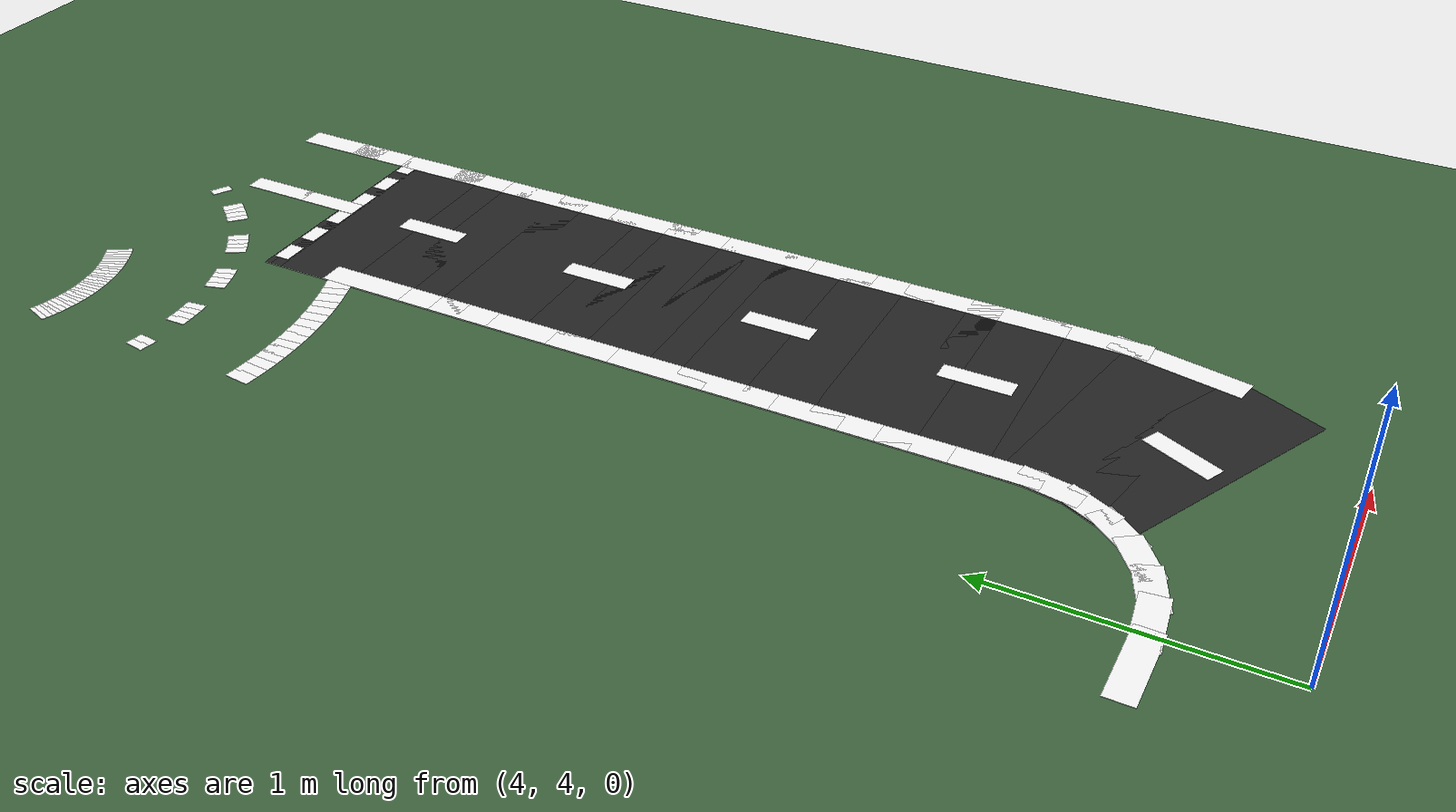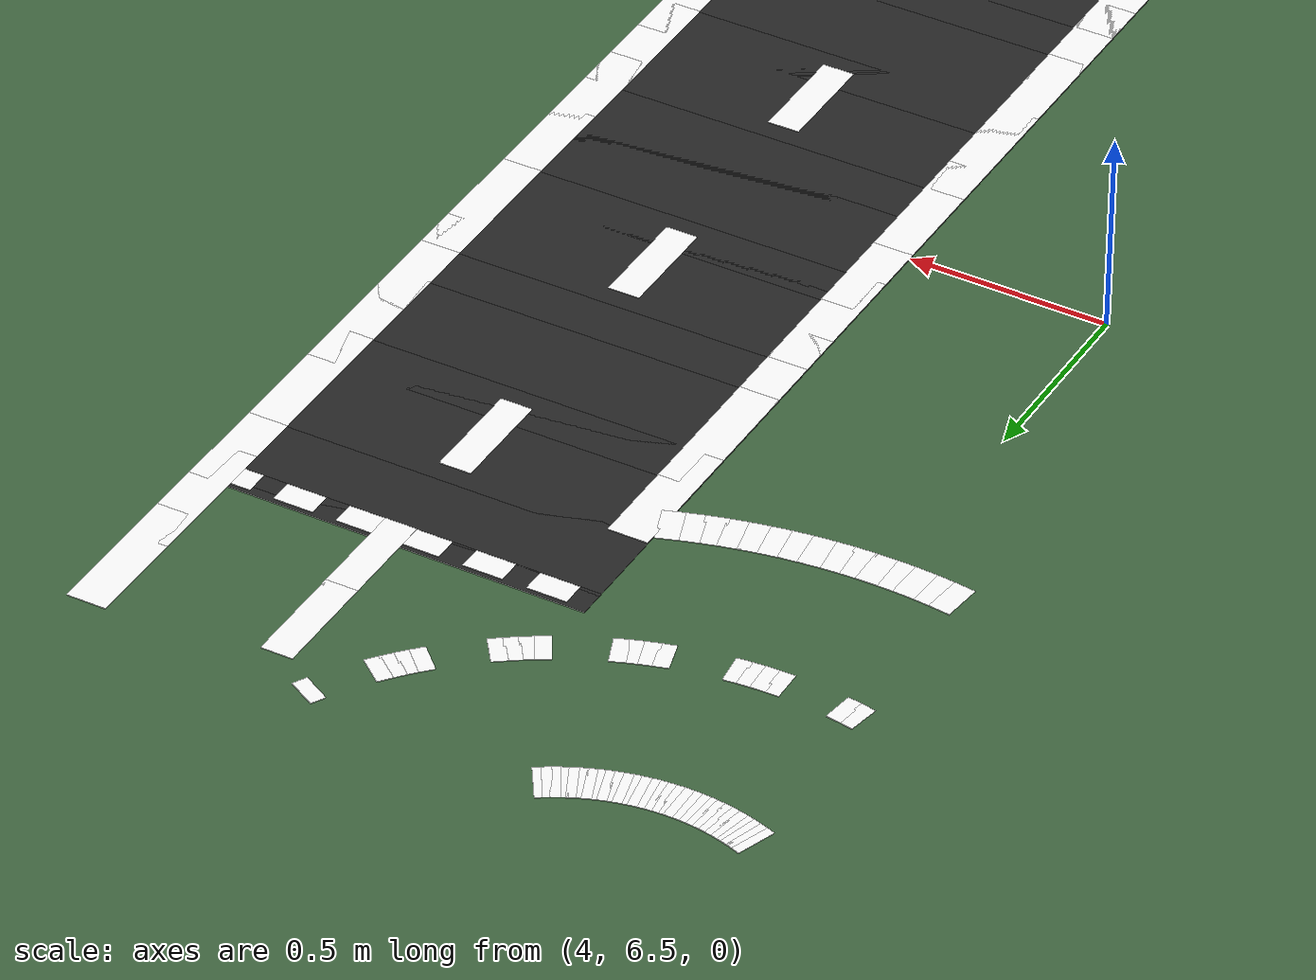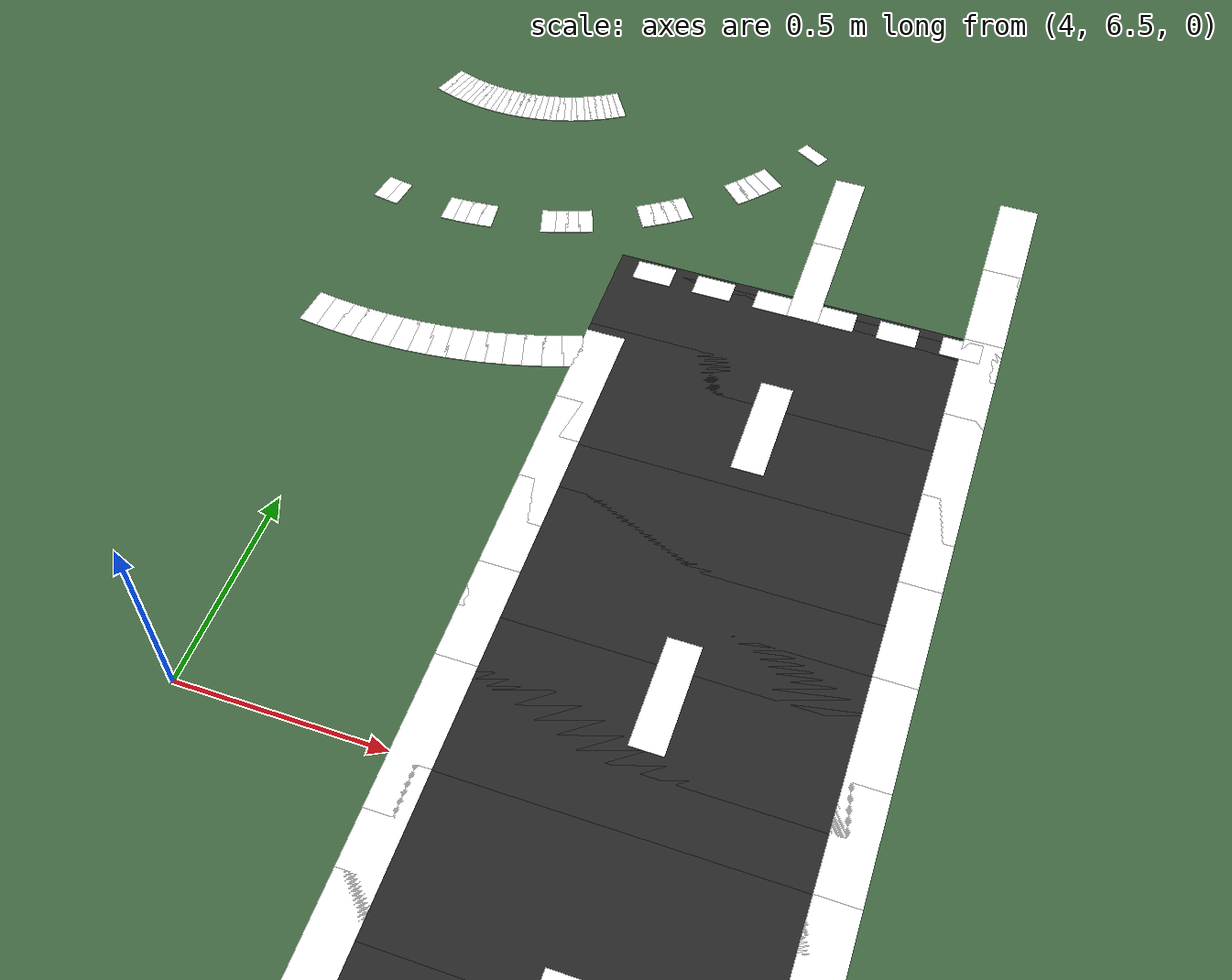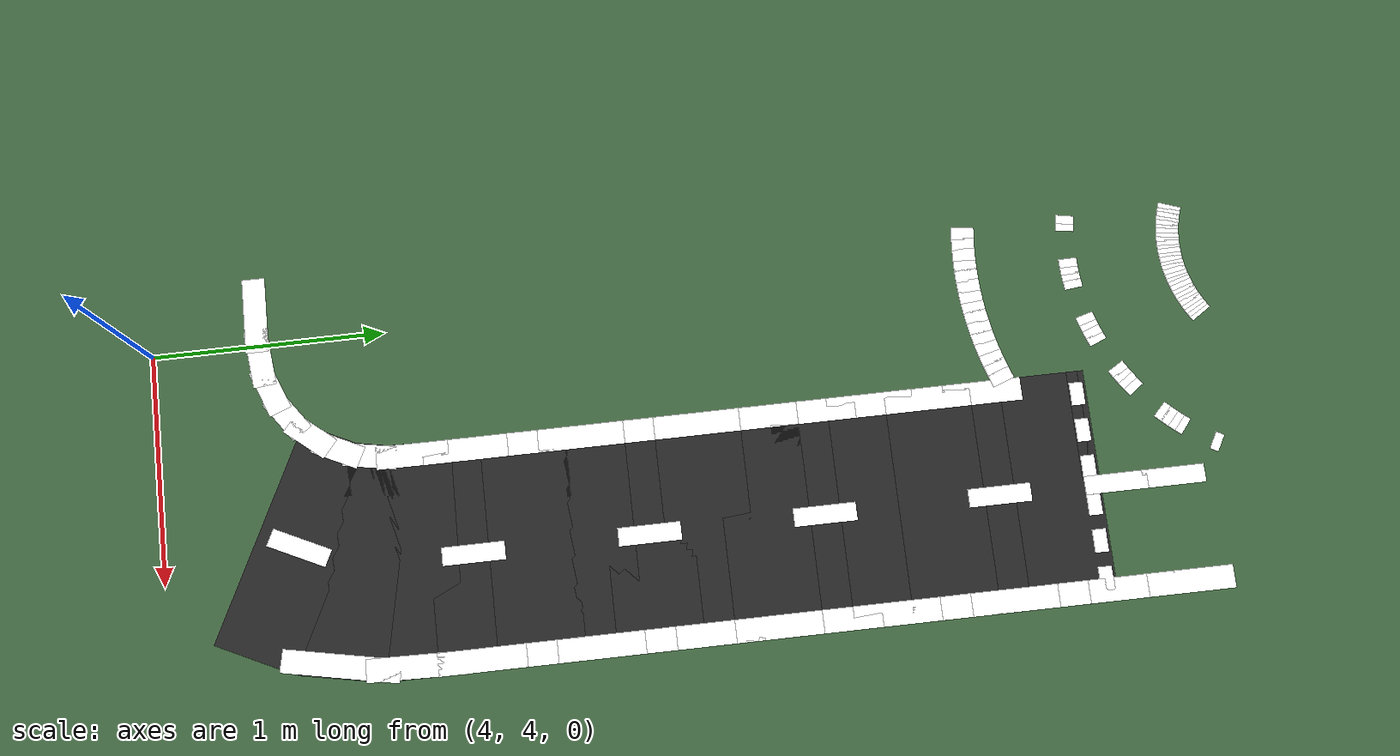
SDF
<sdf version="1.6">
 <world name="university_track">
  <model name="ground_plane">
   <static>true</static>
   <link name="link">
    <collision name="collision">
     <geometry><plane><normal>0 0 1</normal><size>200 200</size></plane></geometry>
    </collision>
    <visual name="visual">
     <geometry><plane><normal>0 0 1</normal><size>200 200</size></plane></geometry>
     <material><ambient>0.25 0.40 0.25 1</ambient><diffuse>0.25 0.40 0.25 1</diffuse></material>
    </visual>
   </link>
  </model>
  <model name="loop_12_0">
   <static>true</static>
   <pose>4.8947 4.5731 0.0020 0 0 1.12132</pose>
   <link name="l">
    <visual name="v">
     <geometry><box><size>0.3690 1.0000 0.0020</size></box></geometry>
     <material><ambient>0.15 0.15 0.15 1</ambient><diffuse>0.15 0.15 0.15 1</diffuse></material>
    </visual>
   </link>
  </model>
  <model name="loop_13_0">
   <static>true</static>
   <pose>4.9726 4.8077 0.0020 0 0 1.37926</pose>
   <link name="l">
    <visual name="v">
     <geometry><box><size>0.3690 1.0000 0.0020</size></box></geometry>
     <material><ambient>0.15 0.15 0.15 1</ambient><diffuse>0.15 0.15 0.15 1</diffuse></material>
    </visual>
   </link>
  </model>
  <model name="loop_14_0">
   <static>true</static>
   <pose>4.9982 5.0550 0.0020 0 0 1.55612</pose>
   <link name="l">
    <visual name="v">
     <geometry><box><size>0.3699 1.0000 0.0020</size></box></geometry>
     <material><ambient>0.15 0.15 0.15 1</ambient><diffuse>0.15 0.15 0.15 1</diffuse></material>
    </visual>
   </link>
  </model>
  <model name="loop_15_0">
   <static>true</static>
   <pose>5.0000 5.3049 0.0020 0 0 1.57080</pose>
   <link name="l">
    <visual name="v">
     <geometry><box><size>0.3700 1.0000 0.0020</size></box></geometry>
     <material><ambient>0.15 0.15 0.15 1</ambient><diffuse>0.15 0.15 0.15 1</diffuse></material>
    </visual>
   </link>
  </model>
  <model name="loop_16_0">
   <static>true</static>
   <pose>5.0000 5.5549 0.0020 0 0 1.57080</pose>
   <link name="l">
    <visual name="v">
     <geometry><box><size>0.3700 1.0000 0.0020</size></box></geometry>
     <material><ambient>0.15 0.15 0.15 1</ambient><diffuse>0.15 0.15 0.15 1</diffuse></material>
    </visual>
   </link>
  </model>
  <model name="loop_17_0">
   <static>true</static>
   <pose>5.0000 5.8049 0.0020 0 0 1.57080</pose>
   <link name="l">
    <visual name="v">
     <geometry><box><size>0.3700 1.0000 0.0020</size></box></geometry>
     <material><ambient>0.15 0.15 0.15 1</ambient><diffuse>0.15 0.15 0.15 1</diffuse></material>
    </visual>
   </link>
  </model>
  <model name="loop_18_0">
   <static>true</static>
   <pose>5.0000 6.0549 0.0020 0 0 1.57080</pose>
   <link name="l">
    <visual name="v">
     <geometry><box><size>0.3700 1.0000 0.0020</size></box></geometry>
     <material><ambient>0.15 0.15 0.15 1</ambient><diffuse>0.15 0.15 0.15 1</diffuse></material>
    </visual>
   </link>
  </model>
  <model name="loop_19_0">
   <static>true</static>
   <pose>5.0000 6.3049 0.0020 0 0 1.57080</pose>
   <link name="l">
    <visual name="v">
     <geometry><box><size>0.3700 1.0000 0.0020</size></box></geometry>
     <material><ambient>0.15 0.15 0.15 1</ambient><diffuse>0.15 0.15 0.15 1</diffuse></material>
    </visual>
   </link>
  </model>
  <model name="loop_20_0">
   <static>true</static>
   <pose>5.0000 6.5549 0.0020 0 0 1.57080</pose>
   <link name="l">
    <visual name="v">
     <geometry><box><size>0.3700 1.0000 0.0020</size></box></geometry>
     <material><ambient>0.15 0.15 0.15 1</ambient><diffuse>0.15 0.15 0.15 1</diffuse></material>
    </visual>
   </link>
  </model>
  <model name="loop_21_0">
   <static>true</static>
   <pose>5.0000 6.8049 0.0020 0 0 1.57080</pose>
   <link name="l">
    <visual name="v">
     <geometry><box><size>0.3700 1.0000 0.0020</size></box></geometry>
     <material><ambient>0.15 0.15 0.15 1</ambient><diffuse>0.15 0.15 0.15 1</diffuse></material>
    </visual>
   </link>
  </model>
  <model name="loop_22_0">
   <static>true</static>
   <pose>5.0000 7.0549 0.0020 0 0 1.57080</pose>
   <link name="l">
    <visual name="v">
     <geometry><box><size>0.3700 1.0000 0.0020</size></box></geometry>
     <material><ambient>0.15 0.15 0.15 1</ambient><diffuse>0.15 0.15 0.15 1</diffuse></material>
    </visual>
   </link>
  </model>
  <model name="loop_23_0">
   <static>true</static>
   <pose>5.0000 7.3049 0.0020 0 0 1.57080</pose>
   <link name="l">
    <visual name="v">
     <geometry><box><size>0.3700 1.0000 0.0020</size></box></geometry>
     <material><ambient>0.15 0.15 0.15 1</ambient><diffuse>0.15 0.15 0.15 1</diffuse></material>
    </visual>
   </link>
  </model>
  <model name="loop_24_0">
   <static>true</static>
   <pose>5.0000 7.5549 0.0020 0 0 1.57080</pose>
   <link name="l">
    <visual name="v">
     <geometry><box><size>0.3700 1.0000 0.0020</size></box></geometry>
     <material><ambient>0.15 0.15 0.15 1</ambient><diffuse>0.15 0.15 0.15 1</diffuse></material>
    </visual>
   </link>
  </model>
  <model name="loop_25_0">
   <static>true</static>
   <pose>5.0000 7.8049 0.0020 0 0 1.57080</pose>
   <link name="l">
    <visual name="v">
     <geometry><box><size>0.3700 1.0000 0.0020</size></box></geometry>
     <material><ambient>0.15 0.15 0.15 1</ambient><diffuse>0.15 0.15 0.15 1</diffuse></material>
    </visual>
   </link>
  </model>
  <model name="loop_26_0">
   <static>true</static>
   <pose>5.0000 7.9400 0.0020 0 0 1.57080</pose>
   <link name="l">
    <visual name="v">
     <geometry><box><size>0.0481 1.0000 0.0020</size></box></geometry>
     <material><ambient>0.15 0.15 0.15 1</ambient><diffuse>0.15 0.15 0.15 1</diffuse></material>
    </visual>
   </link>
  </model>
  <model name="loop_le_7_0">
   <static>true</static>
   <pose>3.8604 4.4495 0.0050 0 0 -0.00431</pose>
   <link name="l">
    <visual name="v">
     <geometry><box><size>0.3291 0.1000 0.0020</size></box></geometry>
     <material><ambient>1.0 1.0 1.0 1</ambient><diffuse>1.0 1.0 1.0 1</diffuse></material>
    </visual>
   </link>
  </model>
  <model name="loop_le_8_0">
   <static>true</static>
   <pose>4.0529 4.4586 0.0050 0 0 0.11587</pose>
   <link name="l">
    <visual name="v">
     <geometry><box><size>0.2515 0.1000 0.0020</size></box></geometry>
     <material><ambient>1.0 1.0 1.0 1</ambient><diffuse>1.0 1.0 1.0 1</diffuse></material>
    </visual>
   </link>
  </model>
  <model name="loop_le_9_0">
   <static>true</static>
   <pose>4.1994 4.4933 0.0050 0 0 0.37234</pose>
   <link name="l">
    <visual name="v">
     <geometry><box><size>0.2136 0.1000 0.0020</size></box></geometry>
     <material><ambient>1.0 1.0 1.0 1</ambient><diffuse>1.0 1.0 1.0 1</diffuse></material>
    </visual>
   </link>
  </model>
  <model name="loop_le_10_0">
   <static>true</static>
   <pose>4.3190 4.5582 0.0050 0 0 0.62399</pose>
   <link name="l">
    <visual name="v">
     <geometry><box><size>0.2106 0.1000 0.0020</size></box></geometry>
     <material><ambient>1.0 1.0 1.0 1</ambient><diffuse>1.0 1.0 1.0 1</diffuse></material>
    </visual>
   </link>
  </model>
  <model name="loop_le_11_0">
   <static>true</static>
   <pose>4.4181 4.6511 0.0050 0 0 0.87974</pose>
   <link name="l">
    <visual name="v">
     <geometry><box><size>0.2128 0.1000 0.0020</size></box></geometry>
     <material><ambient>1.0 1.0 1.0 1</ambient><diffuse>1.0 1.0 1.0 1</diffuse></material>
    </visual>
   </link>
  </model>
  <model name="loop_le_12_0">
   <static>true</static>
   <pose>4.4919 4.7656 0.0050 0 0 1.11835</pose>
   <link name="l">
    <visual name="v">
     <geometry><box><size>0.2114 0.1000 0.0020</size></box></geometry>
     <material><ambient>1.0 1.0 1.0 1</ambient><diffuse>1.0 1.0 1.0 1</diffuse></material>
    </visual>
   </link>
  </model>
  <model name="loop_le_13_0">
   <static>true</static>
   <pose>4.5353 4.9017 0.0050 0 0 1.39229</pose>
   <link name="l">
    <visual name="v">
     <geometry><box><size>0.2322 0.1000 0.0020</size></box></geometry>
     <material><ambient>1.0 1.0 1.0 1</ambient><diffuse>1.0 1.0 1.0 1</diffuse></material>
    </visual>
   </link>
  </model>
  <model name="loop_le_14_0">
   <static>true</static>
   <pose>4.5494 5.0798 0.0050 0 0 1.56454</pose>
   <link name="l">
    <visual name="v">
     <geometry><box><size>0.3097 0.1000 0.0020</size></box></geometry>
     <material><ambient>1.0 1.0 1.0 1</ambient><diffuse>1.0 1.0 1.0 1</diffuse></material>
    </visual>
   </link>
  </model>
  <model name="loop_le_15_0">
   <static>true</static>
   <pose>4.5500 5.3066 0.0050 0 0 1.57085</pose>
   <link name="l">
    <visual name="v">
     <geometry><box><size>0.3654 0.1000 0.0020</size></box></geometry>
     <material><ambient>1.0 1.0 1.0 1</ambient><diffuse>1.0 1.0 1.0 1</diffuse></material>
    </visual>
   </link>
  </model>
  <model name="loop_le_16_0">
   <static>true</static>
   <pose>4.5500 5.5549 0.0050 0 0 1.57080</pose>
   <link name="l">
    <visual name="v">
     <geometry><box><size>0.3700 0.1000 0.0020</size></box></geometry>
     <material><ambient>1.0 1.0 1.0 1</ambient><diffuse>1.0 1.0 1.0 1</diffuse></material>
    </visual>
   </link>
  </model>
  <model name="loop_le_17_0">
   <static>true</static>
   <pose>4.5500 5.8049 0.0050 0 0 1.57080</pose>
   <link name="l">
    <visual name="v">
     <geometry><box><size>0.3700 0.1000 0.0020</size></box></geometry>
     <material><ambient>1.0 1.0 1.0 1</ambient><diffuse>1.0 1.0 1.0 1</diffuse></material>
    </visual>
   </link>
  </model>
  <model name="loop_le_18_0">
   <static>true</static>
   <pose>4.5500 6.0549 0.0050 0 0 1.57080</pose>
   <link name="l">
    <visual name="v">
     <geometry><box><size>0.3700 0.1000 0.0020</size></box></geometry>
     <material><ambient>1.0 1.0 1.0 1</ambient><diffuse>1.0 1.0 1.0 1</diffuse></material>
    </visual>
   </link>
  </model>
  <model name="loop_le_19_0">
   <static>true</static>
   <pose>4.5500 6.3049 0.0050 0 0 1.57080</pose>
   <link name="l">
    <visual name="v">
     <geometry><box><size>0.3700 0.1000 0.0020</size></box></geometry>
     <material><ambient>1.0 1.0 1.0 1</ambient><diffuse>1.0 1.0 1.0 1</diffuse></material>
    </visual>
   </link>
  </model>
  <model name="loop_le_20_0">
   <static>true</static>
   <pose>4.5500 6.5549 0.0050 0 0 1.57080</pose>
   <link name="l">
    <visual name="v">
     <geometry><box><size>0.3700 0.1000 0.0020</size></box></geometry>
     <material><ambient>1.0 1.0 1.0 1</ambient><diffuse>1.0 1.0 1.0 1</diffuse></material>
    </visual>
   </link>
  </model>
  <model name="loop_le_21_0">
   <static>true</static>
   <pose>4.5500 6.8049 0.0050 0 0 1.57080</pose>
   <link name="l">
    <visual name="v">
     <geometry><box><size>0.3700 0.1000 0.0020</size></box></geometry>
     <material><ambient>1.0 1.0 1.0 1</ambient><diffuse>1.0 1.0 1.0 1</diffuse></material>
    </visual>
   </link>
  </model>
  <model name="loop_le_22_0">
   <static>true</static>
   <pose>4.5500 7.0549 0.0050 0 0 1.57080</pose>
   <link name="l">
    <visual name="v">
     <geometry><box><size>0.3700 0.1000 0.0020</size></box></geometry>
     <material><ambient>1.0 1.0 1.0 1</ambient><diffuse>1.0 1.0 1.0 1</diffuse></material>
    </visual>
   </link>
  </model>
  <model name="loop_le_23_0">
   <static>true</static>
   <pose>4.5500 7.3049 0.0050 0 0 1.57080</pose>
   <link name="l">
    <visual name="v">
     <geometry><box><size>0.3700 0.1000 0.0020</size></box></geometry>
     <material><ambient>1.0 1.0 1.0 1</ambient><diffuse>1.0 1.0 1.0 1</diffuse></material>
    </visual>
   </link>
  </model>
  <model name="loop_le_24_0">
   <static>true</static>
   <pose>4.5500 7.5441 0.0050 0 0 1.57080</pose>
   <link name="l">
    <visual name="v">
     <geometry><box><size>0.3398 0.1000 0.0020</size></box></geometry>
     <material><ambient>1.0 1.0 1.0 1</ambient><diffuse>1.0 1.0 1.0 1</diffuse></material>
    </visual>
   </link>
  </model>
  <model name="loop_re_13_0">
   <static>true</static>
   <pose>5.4100 4.7137 0.0050 0 0 1.37357</pose>
   <link name="l">
    <visual name="v">
     <geometry><box><size>0.5057 0.1000 0.0020</size></box></geometry>
     <material><ambient>1.0 1.0 1.0 1</ambient><diffuse>1.0 1.0 1.0 1</diffuse></material>
    </visual>
   </link>
  </model>
  <model name="loop_re_14_0">
   <static>true</static>
   <pose>5.4470 5.0302 0.0050 0 0 1.55018</pose>
   <link name="l">
    <visual name="v">
     <geometry><box><size>0.4301 0.1000 0.0020</size></box></geometry>
     <material><ambient>1.0 1.0 1.0 1</ambient><diffuse>1.0 1.0 1.0 1</diffuse></material>
    </visual>
   </link>
  </model>
  <model name="loop_re_15_0">
   <static>true</static>
   <pose>5.4500 5.3033 0.0050 0 0 1.57075</pose>
   <link name="l">
    <visual name="v">
     <geometry><box><size>0.3746 0.1000 0.0020</size></box></geometry>
     <material><ambient>1.0 1.0 1.0 1</ambient><diffuse>1.0 1.0 1.0 1</diffuse></material>
    </visual>
   </link>
  </model>
  <model name="loop_re_16_0">
   <static>true</static>
   <pose>5.4500 5.5549 0.0050 0 0 1.57080</pose>
   <link name="l">
    <visual name="v">
     <geometry><box><size>0.3700 0.1000 0.0020</size></box></geometry>
     <material><ambient>1.0 1.0 1.0 1</ambient><diffuse>1.0 1.0 1.0 1</diffuse></material>
    </visual>
   </link>
  </model>
  <model name="loop_re_17_0">
   <static>true</static>
   <pose>5.4500 5.8049 0.0050 0 0 1.57080</pose>
   <link name="l">
    <visual name="v">
     <geometry><box><size>0.3700 0.1000 0.0020</size></box></geometry>
     <material><ambient>1.0 1.0 1.0 1</ambient><diffuse>1.0 1.0 1.0 1</diffuse></material>
    </visual>
   </link>
  </model>
  <model name="loop_re_18_0">
   <static>true</static>
   <pose>5.4500 6.0549 0.0050 0 0 1.57080</pose>
   <link name="l">
    <visual name="v">
     <geometry><box><size>0.3700 0.1000 0.0020</size></box></geometry>
     <material><ambient>1.0 1.0 1.0 1</ambient><diffuse>1.0 1.0 1.0 1</diffuse></material>
    </visual>
   </link>
  </model>
  <model name="loop_re_19_0">
   <static>true</static>
   <pose>5.4500 6.3049 0.0050 0 0 1.57080</pose>
   <link name="l">
    <visual name="v">
     <geometry><box><size>0.3700 0.1000 0.0020</size></box></geometry>
     <material><ambient>1.0 1.0 1.0 1</ambient><diffuse>1.0 1.0 1.0 1</diffuse></material>
    </visual>
   </link>
  </model>
  <model name="loop_re_20_0">
   <static>true</static>
   <pose>5.4500 6.5549 0.0050 0 0 1.57080</pose>
   <link name="l">
    <visual name="v">
     <geometry><box><size>0.3700 0.1000 0.0020</size></box></geometry>
     <material><ambient>1.0 1.0 1.0 1</ambient><diffuse>1.0 1.0 1.0 1</diffuse></material>
    </visual>
   </link>
  </model>
  <model name="loop_re_21_0">
   <static>true</static>
   <pose>5.4500 6.8049 0.0050 0 0 1.57080</pose>
   <link name="l">
    <visual name="v">
     <geometry><box><size>0.3700 0.1000 0.0020</size></box></geometry>
     <material><ambient>1.0 1.0 1.0 1</ambient><diffuse>1.0 1.0 1.0 1</diffuse></material>
    </visual>
   </link>
  </model>
  <model name="loop_re_22_0">
   <static>true</static>
   <pose>5.4500 7.0549 0.0050 0 0 1.57080</pose>
   <link name="l">
    <visual name="v">
     <geometry><box><size>0.3700 0.1000 0.0020</size></box></geometry>
     <material><ambient>1.0 1.0 1.0 1</ambient><diffuse>1.0 1.0 1.0 1</diffuse></material>
    </visual>
   </link>
  </model>
  <model name="loop_re_23_0">
   <static>true</static>
   <pose>5.4500 7.3049 0.0050 0 0 1.57080</pose>
   <link name="l">
    <visual name="v">
     <geometry><box><size>0.3700 0.1000 0.0020</size></box></geometry>
     <material><ambient>1.0 1.0 1.0 1</ambient><diffuse>1.0 1.0 1.0 1</diffuse></material>
    </visual>
   </link>
  </model>
  <model name="loop_re_24_0">
   <static>true</static>
   <pose>5.4500 7.5549 0.0050 0 0 1.57080</pose>
   <link name="l">
    <visual name="v">
     <geometry><box><size>0.3700 0.1000 0.0020</size></box></geometry>
     <material><ambient>1.0 1.0 1.0 1</ambient><diffuse>1.0 1.0 1.0 1</diffuse></material>
    </visual>
   </link>
  </model>
  <model name="loop_re_25_0">
   <static>true</static>
   <pose>5.4500 7.8049 0.0050 0 0 1.57080</pose>
   <link name="l">
    <visual name="v">
     <geometry><box><size>0.3700 0.1000 0.0020</size></box></geometry>
     <material><ambient>1.0 1.0 1.0 1</ambient><diffuse>1.0 1.0 1.0 1</diffuse></material>
    </visual>
   </link>
  </model>
  <model name="loop_re_26_0">
   <static>true</static>
   <pose>5.4500 8.0549 0.0050 0 0 1.57080</pose>
   <link name="l">
    <visual name="v">
     <geometry><box><size>0.3700 0.1000 0.0020</size></box></geometry>
     <material><ambient>1.0 1.0 1.0 1</ambient><diffuse>1.0 1.0 1.0 1</diffuse></material>
    </visual>
   </link>
  </model>
  <model name="loop_re_27_0">
   <static>true</static>
   <pose>5.4500 8.3049 0.0050 0 0 1.57080</pose>
   <link name="l">
    <visual name="v">
     <geometry><box><size>0.3700 0.1000 0.0020</size></box></geometry>
     <material><ambient>1.0 1.0 1.0 1</ambient><diffuse>1.0 1.0 1.0 1</diffuse></material>
    </visual>
   </link>
  </model>
  <model name="loop_cd_12_0">
   <static>true</static>
   <pose>4.8947 4.5731 0.0050 0 0 1.12132</pose>
   <link name="l">
    <visual name="v">
     <geometry><box><size>0.2693 0.0800 0.0020</size></box></geometry>
     <material><ambient>1.0 1.0 1.0 1</ambient><diffuse>1.0 1.0 1.0 1</diffuse></material>
    </visual>
   </link>
  </model>
  <model name="loop_cd_15_0">
   <static>true</static>
   <pose>5.0000 5.3049 0.0050 0 0 1.57080</pose>
   <link name="l">
    <visual name="v">
     <geometry><box><size>0.2700 0.0800 0.0020</size></box></geometry>
     <material><ambient>1.0 1.0 1.0 1</ambient><diffuse>1.0 1.0 1.0 1</diffuse></material>
    </visual>
   </link>
  </model>
  <model name="loop_cd_18_0">
   <static>true</static>
   <pose>5.0000 6.0549 0.0050 0 0 1.57080</pose>
   <link name="l">
    <visual name="v">
     <geometry><box><size>0.2700 0.0800 0.0020</size></box></geometry>
     <material><ambient>1.0 1.0 1.0 1</ambient><diffuse>1.0 1.0 1.0 1</diffuse></material>
    </visual>
   </link>
  </model>
  <model name="loop_cd_21_0">
   <static>true</static>
   <pose>5.0000 6.8049 0.0050 0 0 1.57080</pose>
   <link name="l">
    <visual name="v">
     <geometry><box><size>0.2700 0.0800 0.0020</size></box></geometry>
     <material><ambient>1.0 1.0 1.0 1</ambient><diffuse>1.0 1.0 1.0 1</diffuse></material>
    </visual>
   </link>
  </model>
  <model name="loop_cd_24_0">
   <static>true</static>
   <pose>5.0000 7.5549 0.0050 0 0 1.57080</pose>
   <link name="l">
    <visual name="v">
     <geometry><box><size>0.2700 0.0800 0.0020</size></box></geometry>
     <material><ambient>1.0 1.0 1.0 1</ambient><diffuse>1.0 1.0 1.0 1</diffuse></material>
    </visual>
   </link>
  </model>
  <model name="loop_rb_cd_join_26">
   <static>true</static>
   <pose>5.0000 8.0549 0.0060 0 0 1.57080</pose>
   <link name="l">
    <visual name="v">
     <geometry><box><size>0.2700 0.0800 0.0020</size></box></geometry>
     <material><ambient>1.0 1.0 1.0 1</ambient><diffuse>1.0 1.0 1.0 1</diffuse></material>
    </visual>
   </link>
  </model>
  <model name="loop_rb_cd_join_27">
   <static>true</static>
   <pose>5.0000 8.3049 0.0060 0 0 1.57080</pose>
   <link name="l">
    <visual name="v">
     <geometry><box><size>0.2700 0.0800 0.0020</size></box></geometry>
     <material><ambient>1.0 1.0 1.0 1</ambient><diffuse>1.0 1.0 1.0 1</diffuse></material>
    </visual>
   </link>
  </model>
  <model name="roundabout_inner_line_133">
   <static>true</static>
   <pose>3.8147 8.4822 0.0050 0 0 5.93957</pose>
   <link name="l">
    <visual name="v">
     <geometry><box><size>0.0224 0.1000 0.0020</size></box></geometry>
     <material><ambient>1.0 1.0 1.0 1</ambient><diffuse>1.0 1.0 1.0 1</diffuse></material>
    </visual>
   </link>
  </model>
  <model name="roundabout_inner_line_134">
   <static>true</static>
   <pose>3.8318 8.4764 0.0050 0 0 5.97230</pose>
   <link name="l">
    <visual name="v">
     <geometry><box><size>0.0224 0.1000 0.0020</size></box></geometry>
     <material><ambient>1.0 1.0 1.0 1</ambient><diffuse>1.0 1.0 1.0 1</diffuse></material>
    </visual>
   </link>
  </model>
  <model name="roundabout_inner_line_135">
   <static>true</static>
   <pose>3.8490 8.4712 0.0050 0 0 6.00502</pose>
   <link name="l">
    <visual name="v">
     <geometry><box><size>0.0224 0.1000 0.0020</size></box></geometry>
     <material><ambient>1.0 1.0 1.0 1</ambient><diffuse>1.0 1.0 1.0 1</diffuse></material>
    </visual>
   </link>
  </model>
  <model name="roundabout_inner_line_136">
   <static>true</static>
   <pose>3.8664 8.4666 0.0050 0 0 6.03775</pose>
   <link name="l">
    <visual name="v">
     <geometry><box><size>0.0224 0.1000 0.0020</size></box></geometry>
     <material><ambient>1.0 1.0 1.0 1</ambient><diffuse>1.0 1.0 1.0 1</diffuse></material>
    </visual>
   </link>
  </model>
  <model name="roundabout_inner_line_137">
   <static>true</static>
   <pose>3.8839 8.4625 0.0050 0 0 6.07047</pose>
   <link name="l">
    <visual name="v">
     <geometry><box><size>0.0224 0.1000 0.0020</size></box></geometry>
     <material><ambient>1.0 1.0 1.0 1</ambient><diffuse>1.0 1.0 1.0 1</diffuse></material>
    </visual>
   </link>
  </model>
  <model name="roundabout_inner_line_138">
   <static>true</static>
   <pose>3.9016 8.4590 0.0050 0 0 6.10320</pose>
   <link name="l">
    <visual name="v">
     <geometry><box><size>0.0224 0.1000 0.0020</size></box></geometry>
     <material><ambient>1.0 1.0 1.0 1</ambient><diffuse>1.0 1.0 1.0 1</diffuse></material>
    </visual>
   </link>
  </model>
  <model name="roundabout_inner_line_139">
   <static>true</static>
   <pose>3.9193 8.4560 0.0050 0 0 6.13592</pose>
   <link name="l">
    <visual name="v">
     <geometry><box><size>0.0224 0.1000 0.0020</size></box></geometry>
     <material><ambient>1.0 1.0 1.0 1</ambient><diffuse>1.0 1.0 1.0 1</diffuse></material>
    </visual>
   </link>
  </model>
  <model name="roundabout_inner_line_140">
   <static>true</static>
   <pose>3.9372 8.4537 0.0050 0 0 6.16865</pose>
   <link name="l">
    <visual name="v">
     <geometry><box><size>0.0224 0.1000 0.0020</size></box></geometry>
     <material><ambient>1.0 1.0 1.0 1</ambient><diffuse>1.0 1.0 1.0 1</diffuse></material>
    </visual>
   </link>
  </model>
  <model name="roundabout_inner_line_141">
   <static>true</static>
   <pose>3.9551 8.4519 0.0050 0 0 6.20137</pose>
   <link name="l">
    <visual name="v">
     <geometry><box><size>0.0224 0.1000 0.0020</size></box></geometry>
     <material><ambient>1.0 1.0 1.0 1</ambient><diffuse>1.0 1.0 1.0 1</diffuse></material>
    </visual>
   </link>
  </model>
  <model name="roundabout_inner_line_142">
   <static>true</static>
   <pose>3.9730 8.4507 0.0050 0 0 6.23410</pose>
   <link name="l">
    <visual name="v">
     <geometry><box><size>0.0224 0.1000 0.0020</size></box></geometry>
     <material><ambient>1.0 1.0 1.0 1</ambient><diffuse>1.0 1.0 1.0 1</diffuse></material>
    </visual>
   </link>
  </model>
  <model name="roundabout_inner_line_143">
   <static>true</static>
   <pose>3.9910 8.4501 0.0050 0 0 6.26682</pose>
   <link name="l">
    <visual name="v">
     <geometry><box><size>0.0224 0.1000 0.0020</size></box></geometry>
     <material><ambient>1.0 1.0 1.0 1</ambient><diffuse>1.0 1.0 1.0 1</diffuse></material>
    </visual>
   </link>
  </model>
  <model name="roundabout_inner_line_144">
   <static>true</static>
   <pose>4.0090 8.4501 0.0050 0 0 6.29955</pose>
   <link name="l">
    <visual name="v">
     <geometry><box><size>0.0224 0.1000 0.0020</size></box></geometry>
     <material><ambient>1.0 1.0 1.0 1</ambient><diffuse>1.0 1.0 1.0 1</diffuse></material>
    </visual>
   </link>
  </model>
  <model name="roundabout_inner_line_145">
   <static>true</static>
   <pose>4.0270 8.4507 0.0050 0 0 6.33227</pose>
   <link name="l">
    <visual name="v">
     <geometry><box><size>0.0224 0.1000 0.0020</size></box></geometry>
     <material><ambient>1.0 1.0 1.0 1</ambient><diffuse>1.0 1.0 1.0 1</diffuse></material>
    </visual>
   </link>
  </model>
  <model name="roundabout_inner_line_146">
   <static>true</static>
   <pose>4.0449 8.4519 0.0050 0 0 6.36500</pose>
   <link name="l">
    <visual name="v">
     <geometry><box><size>0.0224 0.1000 0.0020</size></box></geometry>
     <material><ambient>1.0 1.0 1.0 1</ambient><diffuse>1.0 1.0 1.0 1</diffuse></material>
    </visual>
   </link>
  </model>
  <model name="roundabout_inner_line_147">
   <static>true</static>
   <pose>4.0628 8.4537 0.0050 0 0 6.39772</pose>
   <link name="l">
    <visual name="v">
     <geometry><box><size>0.0224 0.1000 0.0020</size></box></geometry>
     <material><ambient>1.0 1.0 1.0 1</ambient><diffuse>1.0 1.0 1.0 1</diffuse></material>
    </visual>
   </link>
  </model>
  <model name="roundabout_inner_line_148">
   <static>true</static>
   <pose>4.0807 8.4560 0.0050 0 0 6.43045</pose>
   <link name="l">
    <visual name="v">
     <geometry><box><size>0.0224 0.1000 0.0020</size></box></geometry>
     <material><ambient>1.0 1.0 1.0 1</ambient><diffuse>1.0 1.0 1.0 1</diffuse></material>
    </visual>
   </link>
  </model>
  <model name="roundabout_inner_line_149">
   <static>true</static>
   <pose>4.0984 8.4590 0.0050 0 0 6.46317</pose>
   <link name="l">
    <visual name="v">
     <geometry><box><size>0.0224 0.1000 0.0020</size></box></geometry>
     <material><ambient>1.0 1.0 1.0 1</ambient><diffuse>1.0 1.0 1.0 1</diffuse></material>
    </visual>
   </link>
  </model>
  <model name="roundabout_inner_line_150">
   <static>true</static>
   <pose>4.1161 8.4625 0.0050 0 0 6.49590</pose>
   <link name="l">
    <visual name="v">
     <geometry><box><size>0.0224 0.1000 0.0020</size></box></geometry>
     <material><ambient>1.0 1.0 1.0 1</ambient><diffuse>1.0 1.0 1.0 1</diffuse></material>
    </visual>
   </link>
  </model>
  <model name="roundabout_inner_line_151">
   <static>true</static>
   <pose>4.1336 8.4666 0.0050 0 0 6.52862</pose>
   <link name="l">
    <visual name="v">
     <geometry><box><size>0.0224 0.1000 0.0020</size></box></geometry>
     <material><ambient>1.0 1.0 1.0 1</ambient><diffuse>1.0 1.0 1.0 1</diffuse></material>
    </visual>
   </link>
  </model>
  <model name="roundabout_inner_line_152">
   <static>true</static>
   <pose>4.1510 8.4712 0.0050 0 0 6.56135</pose>
   <link name="l">
    <visual name="v">
     <geometry><box><size>0.0224 0.1000 0.0020</size></box></geometry>
     <material><ambient>1.0 1.0 1.0 1</ambient><diffuse>1.0 1.0 1.0 1</diffuse></material>
    </visual>
   </link>
  </model>
  <model name="roundabout_inner_line_153">
   <static>true</static>
   <pose>4.1682 8.4764 0.0050 0 0 6.59407</pose>
   <link name="l">
    <visual name="v">
     <geometry><box><size>0.0224 0.1000 0.0020</size></box></geometry>
     <material><ambient>1.0 1.0 1.0 1</ambient><diffuse>1.0 1.0 1.0 1</diffuse></material>
    </visual>
   </link>
  </model>
  <model name="roundabout_inner_line_154">
   <static>true</static>
   <pose>4.1853 8.4822 0.0050 0 0 6.62680</pose>
   <link name="l">
    <visual name="v">
     <geometry><box><size>0.0224 0.1000 0.0020</size></box></geometry>
     <material><ambient>1.0 1.0 1.0 1</ambient><diffuse>1.0 1.0 1.0 1</diffuse></material>
    </visual>
   </link>
  </model>
  <model name="roundabout_inner_line_155">
   <static>true</static>
   <pose>4.2021 8.4886 0.0050 0 0 6.65952</pose>
   <link name="l">
    <visual name="v">
     <geometry><box><size>0.0224 0.1000 0.0020</size></box></geometry>
     <material><ambient>1.0 1.0 1.0 1</ambient><diffuse>1.0 1.0 1.0 1</diffuse></material>
    </visual>
   </link>
  </model>
  <model name="roundabout_inner_line_156">
   <static>true</static>
   <pose>4.2187 8.4954 0.0050 0 0 6.69225</pose>
   <link name="l">
    <visual name="v">
     <geometry><box><size>0.0224 0.1000 0.0020</size></box></geometry>
     <material><ambient>1.0 1.0 1.0 1</ambient><diffuse>1.0 1.0 1.0 1</diffuse></material>
    </visual>
   </link>
  </model>
  <model name="roundabout_inner_line_157">
   <static>true</static>
   <pose>4.2351 8.5029 0.0050 0 0 6.72497</pose>
   <link name="l">
    <visual name="v">
     <geometry><box><size>0.0224 0.1000 0.0020</size></box></geometry>
     <material><ambient>1.0 1.0 1.0 1</ambient><diffuse>1.0 1.0 1.0 1</diffuse></material>
    </visual>
   </link>
  </model>
  <model name="roundabout_inner_line_158">
   <static>true</static>
   <pose>4.2513 8.5108 0.0050 0 0 6.75770</pose>
   <link name="l">
    <visual name="v">
     <geometry><box><size>0.0224 0.1000 0.0020</size></box></geometry>
     <material><ambient>1.0 1.0 1.0 1</ambient><diffuse>1.0 1.0 1.0 1</diffuse></material>
    </visual>
   </link>
  </model>
  <model name="roundabout_inner_line_159">
   <static>true</static>
   <pose>4.2671 8.5193 0.0050 0 0 6.79042</pose>
   <link name="l">
    <visual name="v">
     <geometry><box><size>0.0224 0.1000 0.0020</size></box></geometry>
     <material><ambient>1.0 1.0 1.0 1</ambient><diffuse>1.0 1.0 1.0 1</diffuse></material>
    </visual>
   </link>
  </model>
  <model name="roundabout_inner_line_160">
   <static>true</static>
   <pose>4.2827 8.5283 0.0050 0 0 6.82315</pose>
   <link name="l">
    <visual name="v">
     <geometry><box><size>0.0224 0.1000 0.0020</size></box></geometry>
     <material><ambient>1.0 1.0 1.0 1</ambient><diffuse>1.0 1.0 1.0 1</diffuse></material>
    </visual>
   </link>
  </model>
  <model name="roundabout_inner_line_161">
   <static>true</static>
   <pose>4.2980 8.5378 0.0050 0 0 6.85587</pose>
   <link name="l">
    <visual name="v">
     <geometry><box><size>0.0224 0.1000 0.0020</size></box></geometry>
     <material><ambient>1.0 1.0 1.0 1</ambient><diffuse>1.0 1.0 1.0 1</diffuse></material>
    </visual>
   </link>
  </model>
  <model name="roundabout_outer_line_140">
   <static>true</static>
   <pose>3.8343 7.5597 0.0050 0 0 6.16865</pose>
   <link name="l">
    <visual name="v">
     <geometry><box><size>0.0542 0.1000 0.0020</size></box></geometry>
     <material><ambient>1.0 1.0 1.0 1</ambient><diffuse>1.0 1.0 1.0 1</diffuse></material>
    </visual>
   </link>
  </model>
  <model name="roundabout_outer_line_141">
   <static>true</static>
   <pose>3.8815 7.5550 0.0050 0 0 6.20137</pose>
   <link name="l">
    <visual name="v">
     <geometry><box><size>0.0542 0.1000 0.0020</size></box></geometry>
     <material><ambient>1.0 1.0 1.0 1</ambient><diffuse>1.0 1.0 1.0 1</diffuse></material>
    </visual>
   </link>
  </model>
  <model name="roundabout_outer_line_142">
   <static>true</static>
   <pose>3.9289 7.5519 0.0050 0 0 6.23410</pose>
   <link name="l">
    <visual name="v">
     <geometry><box><size>0.0542 0.1000 0.0020</size></box></geometry>
     <material><ambient>1.0 1.0 1.0 1</ambient><diffuse>1.0 1.0 1.0 1</diffuse></material>
    </visual>
   </link>
  </model>
  <model name="roundabout_outer_line_143">
   <static>true</static>
   <pose>3.9763 7.5504 0.0050 0 0 6.26682</pose>
   <link name="l">
    <visual name="v">
     <geometry><box><size>0.0542 0.1000 0.0020</size></box></geometry>
     <material><ambient>1.0 1.0 1.0 1</ambient><diffuse>1.0 1.0 1.0 1</diffuse></material>
    </visual>
   </link>
  </model>
  <model name="roundabout_outer_line_144">
   <static>true</static>
   <pose>4.0237 7.5504 0.0050 0 0 6.29955</pose>
   <link name="l">
    <visual name="v">
     <geometry><box><size>0.0542 0.1000 0.0020</size></box></geometry>
     <material><ambient>1.0 1.0 1.0 1</ambient><diffuse>1.0 1.0 1.0 1</diffuse></material>
    </visual>
   </link>
  </model>
  <model name="roundabout_outer_line_145">
   <static>true</static>
   <pose>4.0711 7.5519 0.0050 0 0 6.33227</pose>
   <link name="l">
    <visual name="v">
     <geometry><box><size>0.0542 0.1000 0.0020</size></box></geometry>
     <material><ambient>1.0 1.0 1.0 1</ambient><diffuse>1.0 1.0 1.0 1</diffuse></material>
    </visual>
   </link>
  </model>
  <model name="roundabout_outer_line_146">
   <static>true</static>
   <pose>4.1185 7.5550 0.0050 0 0 6.36500</pose>
   <link name="l">
    <visual name="v">
     <geometry><box><size>0.0542 0.1000 0.0020</size></box></geometry>
     <material><ambient>1.0 1.0 1.0 1</ambient><diffuse>1.0 1.0 1.0 1</diffuse></material>
    </visual>
   </link>
  </model>
  <model name="roundabout_outer_line_147">
   <static>true</static>
   <pose>4.1657 7.5597 0.0050 0 0 6.39772</pose>
   <link name="l">
    <visual name="v">
     <geometry><box><size>0.0542 0.1000 0.0020</size></box></geometry>
     <material><ambient>1.0 1.0 1.0 1</ambient><diffuse>1.0 1.0 1.0 1</diffuse></material>
    </visual>
   </link>
  </model>
  <model name="roundabout_outer_line_148">
   <static>true</static>
   <pose>4.2127 7.5659 0.0050 0 0 6.43045</pose>
   <link name="l">
    <visual name="v">
     <geometry><box><size>0.0542 0.1000 0.0020</size></box></geometry>
     <material><ambient>1.0 1.0 1.0 1</ambient><diffuse>1.0 1.0 1.0 1</diffuse></material>
    </visual>
   </link>
  </model>
  <model name="roundabout_outer_line_149">
   <static>true</static>
   <pose>4.2595 7.5736 0.0050 0 0 6.46317</pose>
   <link name="l">
    <visual name="v">
     <geometry><box><size>0.0542 0.1000 0.0020</size></box></geometry>
     <material><ambient>1.0 1.0 1.0 1</ambient><diffuse>1.0 1.0 1.0 1</diffuse></material>
    </visual>
   </link>
  </model>
  <model name="roundabout_outer_line_150">
   <static>true</static>
   <pose>4.3061 7.5829 0.0050 0 0 6.49590</pose>
   <link name="l">
    <visual name="v">
     <geometry><box><size>0.0542 0.1000 0.0020</size></box></geometry>
     <material><ambient>1.0 1.0 1.0 1</ambient><diffuse>1.0 1.0 1.0 1</diffuse></material>
    </visual>
   </link>
  </model>
  <model name="roundabout_outer_line_151">
   <static>true</static>
   <pose>4.3523 7.5936 0.0050 0 0 6.52862</pose>
   <link name="l">
    <visual name="v">
     <geometry><box><size>0.0542 0.1000 0.0020</size></box></geometry>
     <material><ambient>1.0 1.0 1.0 1</ambient><diffuse>1.0 1.0 1.0 1</diffuse></material>
    </visual>
   </link>
  </model>
  <model name="roundabout_outer_line_152">
   <static>true</static>
   <pose>4.3981 7.6059 0.0050 0 0 6.56135</pose>
   <link name="l">
    <visual name="v">
     <geometry><box><size>0.0542 0.1000 0.0020</size></box></geometry>
     <material><ambient>1.0 1.0 1.0 1</ambient><diffuse>1.0 1.0 1.0 1</diffuse></material>
    </visual>
   </link>
  </model>
  <model name="roundabout_outer_line_153">
   <static>true</static>
   <pose>4.4435 7.6197 0.0050 0 0 6.59407</pose>
   <link name="l">
    <visual name="v">
     <geometry><box><size>0.0542 0.1000 0.0020</size></box></geometry>
     <material><ambient>1.0 1.0 1.0 1</ambient><diffuse>1.0 1.0 1.0 1</diffuse></material>
    </visual>
   </link>
  </model>
  <model name="roundabout_outer_line_154">
   <static>true</static>
   <pose>4.4884 7.6349 0.0050 0 0 6.62680</pose>
   <link name="l">
    <visual name="v">
     <geometry><box><size>0.0542 0.1000 0.0020</size></box></geometry>
     <material><ambient>1.0 1.0 1.0 1</ambient><diffuse>1.0 1.0 1.0 1</diffuse></material>
    </visual>
   </link>
  </model>
  <model name="roundabout_center_dash_138">
   <static>true</static>
   <pose>3.8210 8.0163 0.0060 0 0 6.10320</pose>
   <link name="l">
    <visual name="v">
     <geometry><box><size>0.0383 0.0800 0.0020</size></box></geometry>
     <material><ambient>1.0 1.0 1.0 1</ambient><diffuse>1.0 1.0 1.0 1</diffuse></material>
    </visual>
   </link>
  </model>
  <model name="roundabout_center_dash_139">
   <static>true</static>
   <pose>3.8533 8.0110 0.0060 0 0 6.13592</pose>
   <link name="l">
    <visual name="v">
     <geometry><box><size>0.0383 0.0800 0.0020</size></box></geometry>
     <material><ambient>1.0 1.0 1.0 1</ambient><diffuse>1.0 1.0 1.0 1</diffuse></material>
    </visual>
   </link>
  </model>
  <model name="roundabout_center_dash_144">
   <static>true</static>
   <pose>4.0164 8.0003 0.0060 0 0 6.29955</pose>
   <link name="l">
    <visual name="v">
     <geometry><box><size>0.0383 0.0800 0.0020</size></box></geometry>
     <material><ambient>1.0 1.0 1.0 1</ambient><diffuse>1.0 1.0 1.0 1</diffuse></material>
    </visual>
   </link>
  </model>
  <model name="roundabout_center_dash_145">
   <static>true</static>
   <pose>4.0491 8.0013 0.0060 0 0 6.33227</pose>
   <link name="l">
    <visual name="v">
     <geometry><box><size>0.0383 0.0800 0.0020</size></box></geometry>
     <material><ambient>1.0 1.0 1.0 1</ambient><diffuse>1.0 1.0 1.0 1</diffuse></material>
    </visual>
   </link>
  </model>
  <model name="roundabout_center_dash_146">
   <static>true</static>
   <pose>4.0817 8.0035 0.0060 0 0 6.36500</pose>
   <link name="l">
    <visual name="v">
     <geometry><box><size>0.0383 0.0800 0.0020</size></box></geometry>
     <material><ambient>1.0 1.0 1.0 1</ambient><diffuse>1.0 1.0 1.0 1</diffuse></material>
    </visual>
   </link>
  </model>
  <model name="roundabout_center_dash_147">
   <static>true</static>
   <pose>4.1143 8.0067 0.0060 0 0 6.39772</pose>
   <link name="l">
    <visual name="v">
     <geometry><box><size>0.0383 0.0800 0.0020</size></box></geometry>
     <material><ambient>1.0 1.0 1.0 1</ambient><diffuse>1.0 1.0 1.0 1</diffuse></material>
    </visual>
   </link>
  </model>
  <model name="roundabout_center_dash_152">
   <static>true</static>
   <pose>4.2746 8.0386 0.0060 0 0 6.56135</pose>
   <link name="l">
    <visual name="v">
     <geometry><box><size>0.0383 0.0800 0.0020</size></box></geometry>
     <material><ambient>1.0 1.0 1.0 1</ambient><diffuse>1.0 1.0 1.0 1</diffuse></material>
    </visual>
   </link>
  </model>
  <model name="roundabout_center_dash_153">
   <static>true</static>
   <pose>4.3059 8.0481 0.0060 0 0 6.59407</pose>
   <link name="l">
    <visual name="v">
     <geometry><box><size>0.0383 0.0800 0.0020</size></box></geometry>
     <material><ambient>1.0 1.0 1.0 1</ambient><diffuse>1.0 1.0 1.0 1</diffuse></material>
    </visual>
   </link>
  </model>
  <model name="roundabout_center_dash_154">
   <static>true</static>
   <pose>4.3368 8.0586 0.0060 0 0 6.62680</pose>
   <link name="l">
    <visual name="v">
     <geometry><box><size>0.0383 0.0800 0.0020</size></box></geometry>
     <material><ambient>1.0 1.0 1.0 1</ambient><diffuse>1.0 1.0 1.0 1</diffuse></material>
    </visual>
   </link>
  </model>
  <model name="roundabout_center_dash_155">
   <static>true</static>
   <pose>4.3675 8.0701 0.0060 0 0 6.65952</pose>
   <link name="l">
    <visual name="v">
     <geometry><box><size>0.0383 0.0800 0.0020</size></box></geometry>
     <material><ambient>1.0 1.0 1.0 1</ambient><diffuse>1.0 1.0 1.0 1</diffuse></material>
    </visual>
   </link>
  </model>
  <model name="roundabout_center_dash_160">
   <static>true</static>
   <pose>4.5140 8.1424 0.0060 0 0 6.82315</pose>
   <link name="l">
    <visual name="v">
     <geometry><box><size>0.0383 0.0800 0.0020</size></box></geometry>
     <material><ambient>1.0 1.0 1.0 1</ambient><diffuse>1.0 1.0 1.0 1</diffuse></material>
    </visual>
   </link>
  </model>
  <model name="roundabout_center_dash_161">
   <static>true</static>
   <pose>4.5418 8.1597 0.0060 0 0 6.85587</pose>
   <link name="l">
    <visual name="v">
     <geometry><box><size>0.0383 0.0800 0.0020</size></box></geometry>
     <material><ambient>1.0 1.0 1.0 1</ambient><diffuse>1.0 1.0 1.0 1</diffuse></material>
    </visual>
   </link>
  </model>
  <model name="roundabout_center_dash_162">
   <static>true</static>
   <pose>4.5690 8.1778 0.0060 0 0 6.88860</pose>
   <link name="l">
    <visual name="v">
     <geometry><box><size>0.0383 0.0800 0.0020</size></box></geometry>
     <material><ambient>1.0 1.0 1.0 1</ambient><diffuse>1.0 1.0 1.0 1</diffuse></material>
    </visual>
   </link>
  </model>
  <model name="roundabout_center_dash_163">
   <static>true</static>
   <pose>4.5956 8.1969 0.0060 0 0 6.92132</pose>
   <link name="l">
    <visual name="v">
     <geometry><box><size>0.0383 0.0800 0.0020</size></box></geometry>
     <material><ambient>1.0 1.0 1.0 1</ambient><diffuse>1.0 1.0 1.0 1</diffuse></material>
    </visual>
   </link>
  </model>
  <model name="roundabout_center_dash_168">
   <static>true</static>
   <pose>4.7185 8.3047 0.0060 0 0 7.08495</pose>
   <link name="l">
    <visual name="v">
     <geometry><box><size>0.0383 0.0800 0.0020</size></box></geometry>
     <material><ambient>1.0 1.0 1.0 1</ambient><diffuse>1.0 1.0 1.0 1</diffuse></material>
    </visual>
   </link>
  </model>
  <model name="roundabout_center_dash_169">
   <static>true</static>
   <pose>4.7409 8.3285 0.0060 0 0 7.11767</pose>
   <link name="l">
    <visual name="v">
     <geometry><box><size>0.0383 0.0800 0.0020</size></box></geometry>
     <material><ambient>1.0 1.0 1.0 1</ambient><diffuse>1.0 1.0 1.0 1</diffuse></material>
    </visual>
   </link>
  </model>
  <model name="roundabout_center_dash_170">
   <static>true</static>
   <pose>4.7624 8.3531 0.0060 0 0 7.15040</pose>
   <link name="l">
    <visual name="v">
     <geometry><box><size>0.0383 0.0800 0.0020</size></box></geometry>
     <material><ambient>1.0 1.0 1.0 1</ambient><diffuse>1.0 1.0 1.0 1</diffuse></material>
    </visual>
   </link>
  </model>
  <model name="roundabout_center_dash_171">
   <static>true</static>
   <pose>4.7832 8.3784 0.0060 0 0 7.18312</pose>
   <link name="l">
    <visual name="v">
     <geometry><box><size>0.0383 0.0800 0.0020</size></box></geometry>
     <material><ambient>1.0 1.0 1.0 1</ambient><diffuse>1.0 1.0 1.0 1</diffuse></material>
    </visual>
   </link>
  </model>
  <model name="roundabout_center_dash_176">
   <static>true</static>
   <pose>4.8740 8.5143 0.0060 0 0 7.34675</pose>
   <link name="l">
    <visual name="v">
     <geometry><box><size>0.0383 0.0800 0.0020</size></box></geometry>
     <material><ambient>1.0 1.0 1.0 1</ambient><diffuse>1.0 1.0 1.0 1</diffuse></material>
    </visual>
   </link>
  </model>
  <model name="giveway_0">
   <static>true</static>
   <pose>4.6000 7.9500 0.0050 0 0 0.00000</pose>
   <link name="l">
    <visual name="v">
     <geometry><box><size>0.1000 0.0600 0.0020</size></box></geometry>
     <material><ambient>1.0 1.0 1.0 1</ambient><diffuse>1.0 1.0 1.0 1</diffuse></material>
    </visual>
   </link>
  </model>
  <model name="giveway_1">
   <static>true</static>
   <pose>4.7600 7.9500 0.0050 0 0 0.00000</pose>
   <link name="l">
    <visual name="v">
     <geometry><box><size>0.1000 0.0600 0.0020</size></box></geometry>
     <material><ambient>1.0 1.0 1.0 1</ambient><diffuse>1.0 1.0 1.0 1</diffuse></material>
    </visual>
   </link>
  </model>
  <model name="giveway_2">
   <static>true</static>
   <pose>4.9200 7.9500 0.0050 0 0 0.00000</pose>
   <link name="l">
    <visual name="v">
     <geometry><box><size>0.1000 0.0600 0.0020</size></box></geometry>
     <material><ambient>1.0 1.0 1.0 1</ambient><diffuse>1.0 1.0 1.0 1</diffuse></material>
    </visual>
   </link>
  </model>
  <model name="giveway_3">
   <static>true</static>
   <pose>5.0800 7.9500 0.0050 0 0 0.00000</pose>
   <link name="l">
    <visual name="v">
     <geometry><box><size>0.1000 0.0600 0.0020</size></box></geometry>
     <material><ambient>1.0 1.0 1.0 1</ambient><diffuse>1.0 1.0 1.0 1</diffuse></material>
    </visual>
   </link>
  </model>
  <model name="giveway_4">
   <static>true</static>
   <pose>5.2400 7.9500 0.0050 0 0 0.00000</pose>
   <link name="l">
    <visual name="v">
     <geometry><box><size>0.1000 0.0600 0.0020</size></box></geometry>
     <material><ambient>1.0 1.0 1.0 1</ambient><diffuse>1.0 1.0 1.0 1</diffuse></material>
    </visual>
   </link>
  </model>
  <model name="giveway_5">
   <static>true</static>
   <pose>5.4000 7.9500 0.0050 0 0 0.00000</pose>
   <link name="l">
    <visual name="v">
     <geometry><box><size>0.1000 0.0600 0.0020</size></box></geometry>
     <material><ambient>1.0 1.0 1.0 1</ambient><diffuse>1.0 1.0 1.0 1</diffuse></material>
    </visual>
   </link>
  </model>
 </world>
</sdf>
